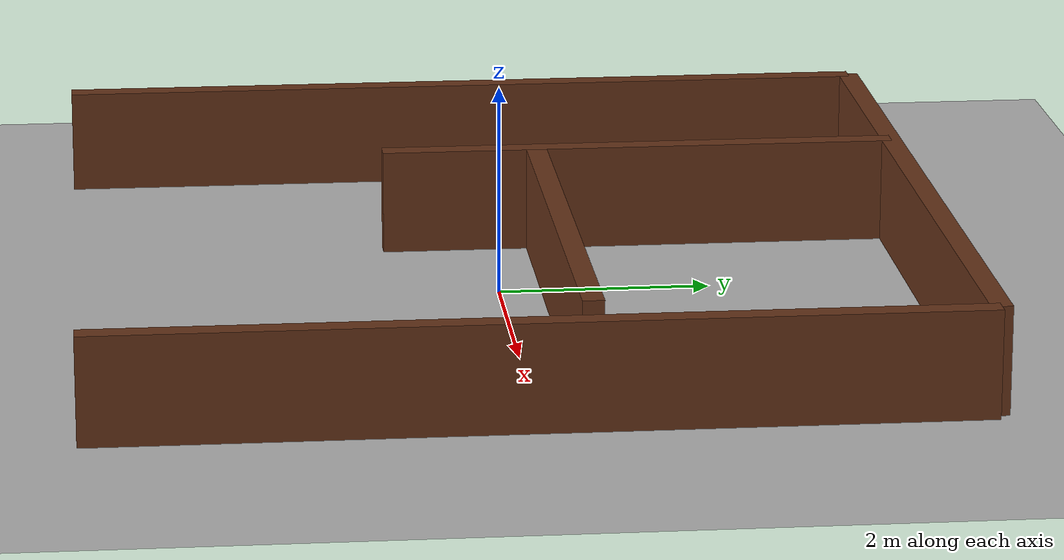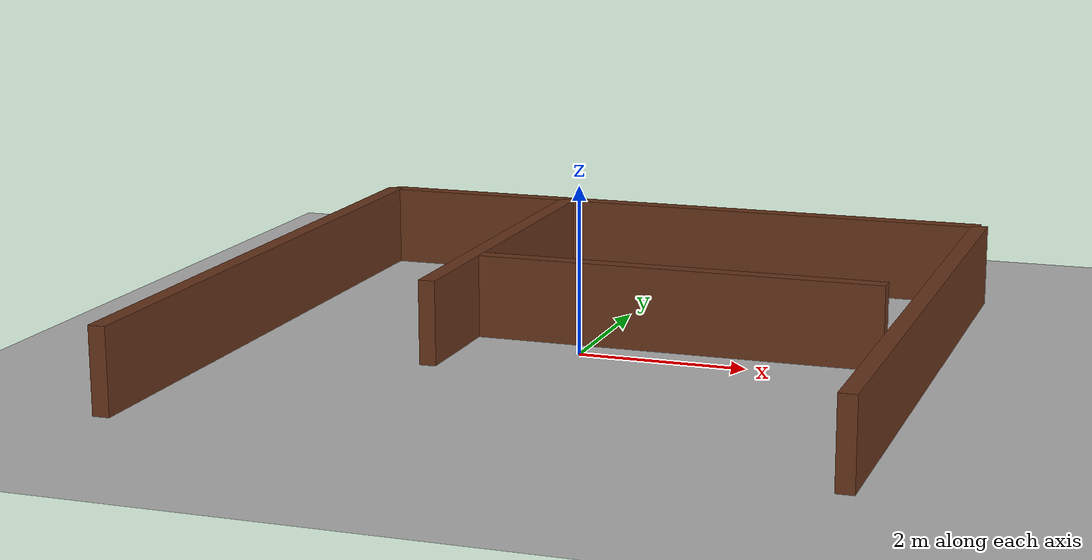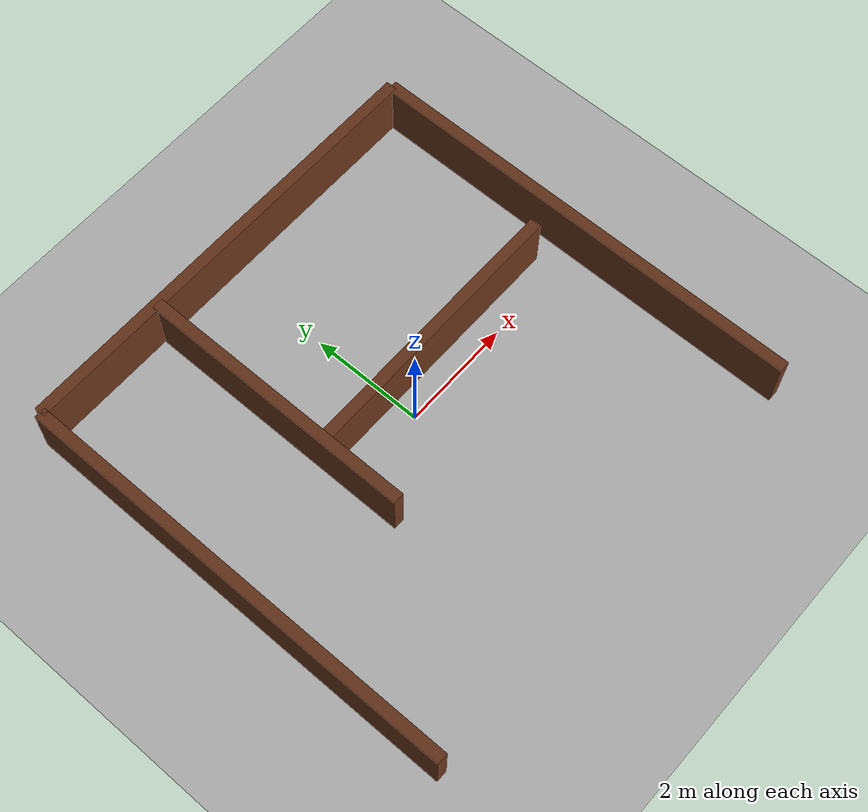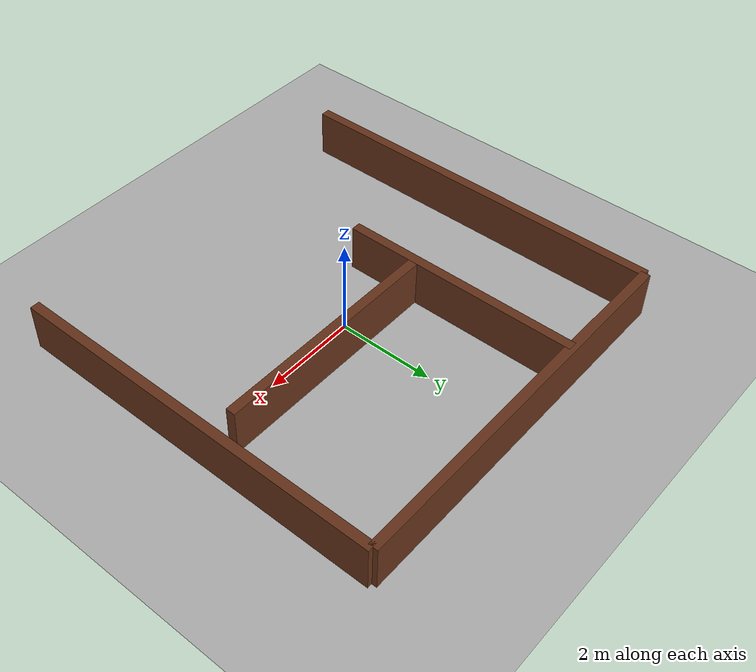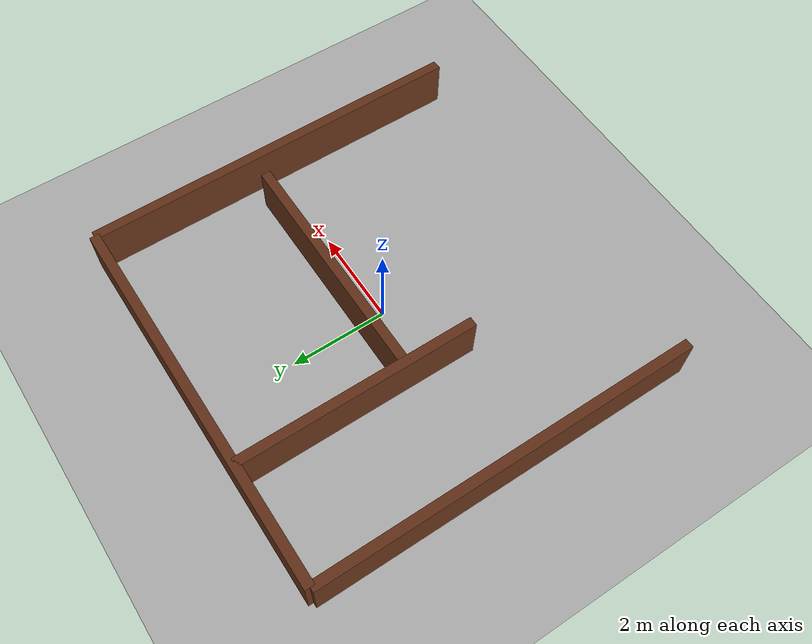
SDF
<?xml version="1.0" ?>
<sdf version="1.9">
  <world name="maze_world">

    <!-- Physics -->
    <physics name="1ms" type="ignored">
      <max_step_size>0.001</max_step_size>
      <real_time_factor>1.0</real_time_factor>
    </physics>

    <!-- Ground -->
    <model name="ground">
      <static>true</static>
      <link name="ground_link">
        <collision name="ground_collision">
          <geometry>
            <plane>
              <normal>0 0 1</normal>
              <size>20 20</size>
            </plane>
          </geometry>
        </collision>
        <visual name="ground_visual">
          <geometry>
            <plane>
              <normal>0 0 1</normal>
              <size>20 20</size>
            </plane>
          </geometry>
          <material>
            <ambient>0.7 0.7 0.7 1</ambient>
            <diffuse>0.7 0.7 0.7 1</diffuse>
          </material>
        </visual>
      </link>
    </model>

    <!-- Maze walls -->
    <model name="maze_walls">
      <static>true</static>

      <!-- Outer left wall -->
      <link name="wall_1">
        <pose>-4 0 0.5 0 0 0</pose>
        <collision name="collision">
          <geometry>
            <box><size>0.2 8 1</size></box>
          </geometry>
        </collision>
        <visual name="visual">
          <geometry>
            <box><size>0.2 8 1</size></box>
          </geometry>
          <material>
            <ambient>0.4 0.2 0.1 1</ambient>
            <diffuse>0.4 0.2 0.1 1</diffuse>
          </material>
        </visual>
      </link>

      <!-- Outer right wall -->
      <link name="wall_2">
        <pose>4 0 0.5 0 0 0</pose>
        <collision name="collision">
          <geometry>
            <box><size>0.2 8 1</size></box>
          </geometry>
        </collision>
        <visual name="visual">
          <geometry>
            <box><size>0.2 8 1</size></box>
          </geometry>
          <material>
            <ambient>0.4 0.2 0.1 1</ambient>
            <diffuse>0.4 0.2 0.1 1</diffuse>
          </material>
        </visual>
      </link>

      <!-- Back wall -->
      <link name="wall_3">
        <pose>0 4 0.5 0 0 0</pose>
        <collision name="collision">
          <geometry>
            <box><size>8 0.2 1</size></box>
          </geometry>
        </collision>
        <visual name="visual">
          <geometry>
            <box><size>8 0.2 1</size></box>
          </geometry>
          <material>
            <ambient>0.4 0.2 0.1 1</ambient>
            <diffuse>0.4 0.2 0.1 1</diffuse>
          </material>
        </visual>
      </link>

      <!-- Internal vertical wall -->
      <link name="wall_4">
        <pose>-1.5 1.5 0.5 0 0 0</pose>
        <collision name="collision">
          <geometry>
            <box><size>0.2 5 1</size></box>
          </geometry>
        </collision>
        <visual name="visual">
          <geometry>
            <box><size>0.2 5 1</size></box>
          </geometry>
          <material>
            <ambient>0.4 0.2 0.1 1</ambient>
            <diffuse>0.4 0.2 0.1 1</diffuse>
          </material>
        </visual>
      </link>

      <!-- Internal horizontal wall -->
      <link name="wall_5">
        <pose>1 0.5 0.5 0 0 0</pose>
        <collision name="collision">
          <geometry>
            <box><size>5 0.2 1</size></box>
          </geometry>
        </collision>
        <visual name="visual">
          <geometry>
            <box><size>5 0.2 1</size></box>
          </geometry>
          <material>
            <ambient>0.4 0.2 0.1 1</ambient>
            <diffuse>0.4 0.2 0.1 1</diffuse>
          </material>
        </visual>
      </link>

    </model>

    <!-- Lighting -->
    <light name="sun" type="directional">
      <pose>0 0 10 0 0 0</pose>
      <direction>-0.5 0.5 -1</direction>
      <diffuse>0.8 0.8 0.8 1</diffuse>
      <specular>0.2 0.2 0.2 1</specular>
    </light>

  </world>
</sdf>
